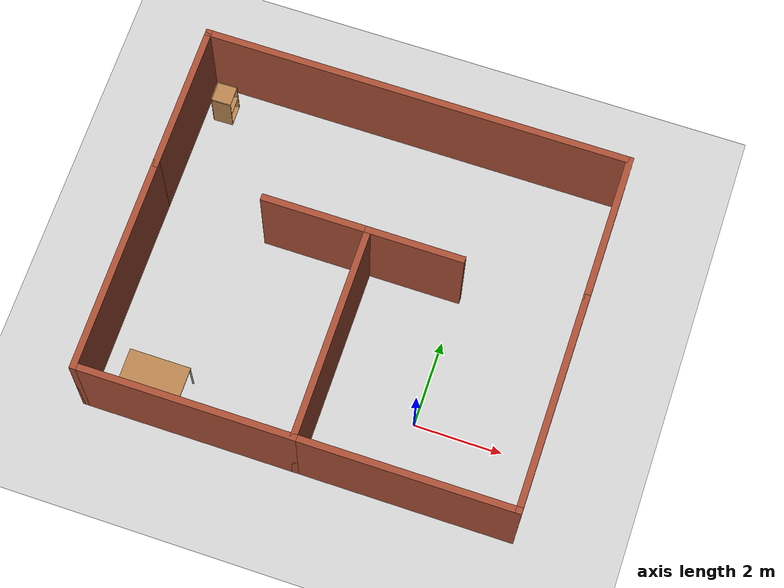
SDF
<sdf version="1.6">
 <world name="default">
  <light name="sun" type="directional">
   <pose>0 0 10 0 -0 0</pose>
   <diffuse>0.8 0.8 0.8 1</diffuse>
   <specular>0.1 0.1 0.1 1</specular>
   <attenuation>
    <range>1000</range>
    <constant>0.9</constant>
    <linear>0.01</linear>
    <quadratic>0.001</quadratic>
   </attenuation>
   <direction>-0.5 0.5 -1</direction>
  </light>
  <model name="ground_plane">
   <static>1</static>
   <link name="link">
    <collision name="collision">
     <geometry><plane><normal>0 0 1</normal><size>100 100</size></plane></geometry>
     <surface><friction><ode><mu>100</mu><mu2>50</mu2></ode></friction></surface>
    </collision>
    <visual name="visual">
     <cast_shadows>0</cast_shadows>
     <geometry><plane><normal>0 0 1</normal><size>100 100</size></plane></geometry>
     <material>
      <script><uri>file://media/materials/scripts/gazebo.material</uri><name>Gazebo/Grey</name></script>
     </material>
    </visual>
   </link>
  </model>
  <gravity>0 0 -9.8</gravity>
  <magnetic_field>6e-06 2.3e-05 -4.2e-05</magnetic_field>
  <atmosphere type="adiabatic"/>
  <physics name="default_physics" default="0" type="ode">
   <max_step_size>0.001</max_step_size>
   <real_time_factor>1</real_time_factor>
   <real_time_update_rate>1000</real_time_update_rate>
  </physics>
  <scene><ambient>0.4 0.4 0.4 1</ambient><background>0.7 0.7 0.7 1</background><shadows>1</shadows></scene>
  <spherical_coordinates>
   <surface_model>EARTH_WGS84</surface_model>
   <latitude_deg>0</latitude_deg>
   <longitude_deg>0</longitude_deg>
   <elevation>0</elevation>
   <heading_deg>0</heading_deg>
  </spherical_coordinates>
  <model name="room">
   <pose>-2.10802 2.34097 0 0 -0 0</pose>
   <link name="Wall_23">
    <collision name="Wall_23_Collision">
     <geometry><box><size>5 0.15 2.5</size></box></geometry>
     <pose>0 0 1.25 0 -0 0</pose>
    </collision>
    <visual name="Wall_23_Visual">
     <pose>0 0 1.25 0 -0 0</pose>
     <geometry><box><size>5 0.15 2.5</size></box></geometry>
     <material>
      <script><uri>file://media/materials/scripts/gazebo.material</uri><name>Gazebo/Bricks</name></script>
      <ambient>1 1 1 1</ambient>
     </material>
    </visual>
    <pose>-4.85 -1.675 0 0 0 -1.5708</pose>
   </link>
   <link name="Wall_24">
    <collision name="Wall_24_Collision">
     <geometry><box><size>5 0.15 2.5</size></box></geometry>
     <pose>0 0 1.25 0 -0 0</pose>
    </collision>
    <visual name="Wall_24_Visual">
     <pose>0 0 1.25 0 -0 0</pose>
     <geometry><box><size>5 0.15 2.5</size></box></geometry>
     <material>
      <script><uri>file://media/materials/scripts/gazebo.material</uri><name>Gazebo/Bricks</name></script>
      <ambient>1 1 1 1</ambient>
     </material>
    </visual>
    <pose>-2.425 -4.1 0 0 -0 0</pose>
   </link>
   <link name="Wall_27">
    <collision name="Wall_27_Collision">
     <geometry><box><size>5 0.15 2.5</size></box></geometry>
     <pose>0 0 1.25 0 -0 0</pose>
    </collision>
    <visual name="Wall_27_Visual">
     <pose>0 0 1.25 0 -0 0</pose>
     <geometry><box><size>5 0.15 2.5</size></box></geometry>
     <material>
      <script><uri>file://media/materials/scripts/gazebo.material</uri><name>Gazebo/Bricks</name></script>
      <ambient>1 1 1 1</ambient>
     </material>
    </visual>
    <pose>0 -1.675 0 0 0 -1.5708</pose>
   </link>
   <link name="Wall_30">
    <collision name="Wall_30_Collision">
     <geometry><box><size>5 0.15 2.5</size></box></geometry>
     <pose>0 0 1.25 0 -0 0</pose>
    </collision>
    <visual name="Wall_30_Visual">
     <pose>0 0 1.25 0 -0 0</pose>
     <geometry><box><size>5 0.15 2.5</size></box></geometry>
     <material>
      <script><uri>file://media/materials/scripts/gazebo.material</uri><name>Gazebo/Bricks</name></script>
      <ambient>1 1 1 1</ambient>
     </material>
    </visual>
    <pose>4.85 -1.675 0 0 0 -1.5708</pose>
   </link>
   <link name="Wall_31">
    <collision name="Wall_31_Collision">
     <geometry><box><size>5 0.15 2.5</size></box></geometry>
     <pose>0 0 1.25 0 -0 0</pose>
    </collision>
    <visual name="Wall_31_Visual">
     <pose>0 0 1.25 0 -0 0</pose>
     <geometry><box><size>5 0.15 2.5</size></box></geometry>
     <material>
      <script><uri>file://media/materials/scripts/gazebo.material</uri><name>Gazebo/Bricks</name></script>
      <ambient>1 1 1 1</ambient>
     </material>
    </visual>
    <pose>2.425 -4.1 0 0 -0 3.14159</pose>
   </link>
   <link name="Wall_36">
    <collision name="Wall_36_Collision">
     <geometry><box><size>3.5 0.15 2.5</size></box></geometry>
     <pose>0 0 1.25 0 -0 0</pose>
    </collision>
    <visual name="Wall_36_Visual">
     <pose>0 0 1.25 0 -0 0</pose>
     <geometry><box><size>3.5 0.15 2.5</size></box></geometry>
     <material>
      <script><uri>file://media/materials/scripts/gazebo.material</uri><name>Gazebo/Bricks</name></script>
      <ambient>1 1 1 1</ambient>
     </material>
    </visual>
    <pose>-4.85 2.425 0 0 -0 1.5708</pose>
   </link>
   <link name="Wall_37">
    <collision name="Wall_37_Collision">
     <geometry><box><size>9.75 0.15 2.5</size></box></geometry>
     <pose>0 0 1.25 0 -0 0</pose>
    </collision>
    <visual name="Wall_37_Visual">
     <pose>0 0 1.25 0 -0 0</pose>
     <geometry><box><size>9.75 0.15 2.5</size></box></geometry>
     <material>
      <script><uri>file://media/materials/scripts/gazebo.material</uri><name>Gazebo/Bricks</name></script>
      <ambient>1 1 1 1</ambient>
     </material>
    </visual>
    <pose>-0.05 4.1 0 0 -0 0</pose>
   </link>
   <link name="Wall_39">
    <collision name="Wall_39_Collision">
     <geometry><box><size>3.5 0.15 2.5</size></box></geometry>
     <pose>0 0 1.25 0 -0 0</pose>
    </collision>
    <visual name="Wall_39_Visual">
     <pose>0 0 1.25 0 -0 0</pose>
     <geometry><box><size>3.5 0.15 2.5</size></box></geometry>
     <material>
      <script><uri>file://media/materials/scripts/gazebo.material</uri><name>Gazebo/Bricks</name></script>
      <ambient>1 1 1 1</ambient>
     </material>
    </visual>
    <pose>4.85 2.425 0 0 -0 1.5708</pose>
   </link>
   <link name="Wall_41">
    <collision name="Wall_41_Collision">
     <geometry><box><size>2.25 0.15 2.5</size></box></geometry>
     <pose>0 0 1.25 0 -0 0</pose>
    </collision>
    <visual name="Wall_41_Visual">
     <pose>0 0 1.25 0 -0 0</pose>
     <geometry><box><size>2.25 0.15 2.5</size></box></geometry>
     <material>
      <script><uri>file://media/materials/scripts/gazebo.material</uri><name>Gazebo/Bricks</name></script>
      <ambient>1 1 1 1</ambient>
     </material>
    </visual>
    <pose>1.05 0.75 0 0 -0 0</pose>
   </link>
   <link name="Wall_43">
    <collision name="Wall_43_Collision">
     <geometry><box><size>2.5 0.15 2.5</size></box></geometry>
     <pose>0 0 1.25 0 -0 0</pose>
    </collision>
    <visual name="Wall_43_Visual">
     <pose>0 0 1.25 0 -0 0</pose>
     <geometry><box><size>2.5 0.15 2.5</size></box></geometry>
     <material>
      <script><uri>file://media/materials/scripts/gazebo.material</uri><name>Gazebo/Bricks</name></script>
      <ambient>1 1 1 1</ambient>
     </material>
    </visual>
    <pose>-1.175 0.75 0 0 -0 3.14159</pose>
   </link>
   <static>1</static>
  </model>
  <model name="cabinet">
   <static>1</static>
   <link name="cabinet_bottom_plate">
    <inertial>
     <pose>0 0 -1 0 -0 0</pose>
     <inertia><ixx>2.05</ixx><ixy>0</ixy><ixz>0</ixz><iyy>2.05</iyy><iyz>0</iyz><izz>2.05</izz></inertia>
     <mass>25</mass>
    </inertial>
    <collision name="cabinet_bottom_plate_geom">
     <pose>0 0 0.01 0 -0 0</pose>
     <geometry><box><size>0.45 0.45 0.02</size></box></geometry>
    </collision>
    <visual name="cabinet_bottom_plate_geom_visual">
     <pose>0 0 0.01 0 -0 0</pose>
     <geometry><box><size>0.45 0.45 0.02</size></box></geometry>
     <material>
      <script><uri>file://media/materials/scripts/gazebo.material</uri><name>Gazebo/Wood</name></script>
     </material>
    </visual>
    <collision name="cabinet_bottom_plate_geom_cabinet_back_plate">
     <pose>0.235 0 0.51 0 -0 0</pose>
     <geometry><box><size>0.02 0.45 1.02</size></box></geometry>
    </collision>
    <visual name="cabinet_bottom_plate_geom_cabinet_back_plate_visual">
     <pose>0.235 0 0.51 0 -0 0</pose>
     <geometry><box><size>0.02 0.45 1.02</size></box></geometry>
     <material>
      <script><uri>file://media/materials/scripts/gazebo.material</uri><name>Gazebo/Wood</name></script>
     </material>
    </visual>
    <collision name="cabinet_bottom_plate_geom_cabinet_left_plate">
     <pose>0 0.235 0.51 0 -0 0</pose>
     <geometry><box><size>0.45 0.02 1.02</size></box></geometry>
    </collision>
    <visual name="cabinet_bottom_plate_geom_cabinet_left_plate_visual">
     <pose>0 0.235 0.51 0 -0 0</pose>
     <geometry><box><size>0.45 0.02 1.02</size></box></geometry>
     <material>
      <script><uri>file://media/materials/scripts/gazebo.material</uri><name>Gazebo/Wood</name></script>
     </material>
    </visual>
    <collision name="cabinet_bottom_plate_geom_cabinet_middle_plate">
     <pose>0 0 0.51 0 -0 0</pose>
     <geometry><box><size>0.45 0.45 0.02</size></box></geometry>
    </collision>
    <visual name="cabinet_bottom_plate_geom_cabinet_middle_plate_visual">
     <pose>0 0 0.51 0 -0 0</pose>
     <geometry><box><size>0.45 0.45 0.02</size></box></geometry>
     <material>
      <script><uri>file://media/materials/scripts/gazebo.material</uri><name>Gazebo/Wood</name></script>
     </material>
    </visual>
    <collision name="cabinet_bottom_plate_geom_cabinet_right_plate">
     <pose>0 -0.235 0.51 0 -0 0</pose>
     <geometry><box><size>0.45 0.02 1.02</size></box></geometry>
    </collision>
    <visual name="cabinet_bottom_plate_geom_cabinet_right_plate_visual">
     <pose>0 -0.235 0.51 0 -0 0</pose>
     <geometry><box><size>0.45 0.02 1.02</size></box></geometry>
     <material>
      <script><uri>file://media/materials/scripts/gazebo.material</uri><name>Gazebo/Wood</name></script>
     </material>
    </visual>
    <collision name="cabinet_bottom_plate_geom_cabinet_top_plate">
     <pose>0 0 1.01 0 -0 0</pose>
     <geometry><box><size>0.45 0.45 0.02</size></box></geometry>
    </collision>
    <visual name="cabinet_bottom_plate_geom_cabinet_top_plate_visual">
     <pose>0 0 1.01 0 -0 0</pose>
     <geometry><box><size>0.45 0.45 0.02</size></box></geometry>
     <material>
      <script><uri>file://media/materials/scripts/gazebo.material</uri><name>Gazebo/Wood</name></script>
     </material>
    </visual>
   </link>
   <pose>-6.44453 5.78963 0 0 0 -3.12343</pose>
  </model>
  <model name="table">
   <static>0</static>
   <link name="link">
    <collision name="surface">
     <pose>0 0 1 0 -0 0</pose>
     <geometry><box><size>1.5 0.8 0.03</size></box></geometry>
     <surface><friction><ode><mu>0.6</mu><mu2>0.6</mu2></ode></friction></surface>
    </collision>
    <visual name="visual1">
     <pose>0 0 1 0 -0 0</pose>
     <geometry><box><size>1.4 0.8 0.04</size></box></geometry>
     <material>
      <script><uri>file://media/materials/scripts/gazebo.material</uri><name>Gazebo/Wood</name></script>
     </material>
    </visual>
    <collision name="front_left_leg">
     <pose>0.68 0.38 0.5 0 -0 0</pose>
     <geometry><cylinder><radius>0.02</radius><length>1</length></cylinder></geometry>
    </collision>
    <visual name="front_left_leg">
     <pose>0.68 0.38 0.5 0 -0 0</pose>
     <geometry><cylinder><radius>0.02</radius><length>1</length></cylinder></geometry>
     <material>
      <script><uri>file://media/materials/scripts/gazebo.material</uri><name>Gazebo/Grey</name></script>
     </material>
    </visual>
    <collision name="front_right_leg">
     <pose>0.68 -0.38 0.5 0 -0 0</pose>
     <geometry><cylinder><radius>0.02</radius><length>1</length></cylinder></geometry>
    </collision>
    <visual name="front_right_leg">
     <pose>0.68 -0.38 0.5 0 -0 0</pose>
     <geometry><cylinder><radius>0.02</radius><length>1</length></cylinder></geometry>
     <material>
      <script><uri>file://media/materials/scripts/gazebo.material</uri><name>Gazebo/Grey</name></script>
     </material>
    </visual>
    <collision name="back_right_leg">
     <pose>-0.68 -0.38 0.5 0 -0 0</pose>
     <geometry><cylinder><radius>0.02</radius><length>1</length></cylinder></geometry>
    </collision>
    <visual name="back_right_leg">
     <pose>-0.68 -0.38 0.5 0 -0 0</pose>
     <geometry><cylinder><radius>0.02</radius><length>1</length></cylinder></geometry>
     <material>
      <script><uri>file://media/materials/scripts/gazebo.material</uri><name>Gazebo/Grey</name></script>
     </material>
    </visual>
    <collision name="back_left_leg">
     <pose>-0.68 0.38 0.5 0 -0 0</pose>
     <geometry><cylinder><radius>0.02</radius><length>1</length></cylinder></geometry>
    </collision>
    <visual name="back_left_leg">
     <pose>-0.68 0.38 0.5 0 -0 0</pose>
     <geometry><cylinder><radius>0.02</radius><length>1</length></cylinder></geometry>
     <material>
      <script><uri>file://media/materials/scripts/gazebo.material</uri><name>Gazebo/Grey</name></script>
     </material>
    </visual>
    <inertial>
     <inertia><ixx>1</ixx><ixy>0</ixy><ixz>0</ixz><iyy>1</iyy><iyz>0</iyz><izz>1</izz></inertia>
     <mass>1</mass>
    </inertial>
   </link>
   <pose>-5.59305 -1.00808 -1e-06 -1e-06 1e-06 0</pose>
  </model>
 </world>
</sdf>
